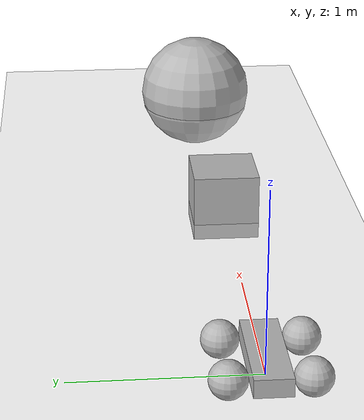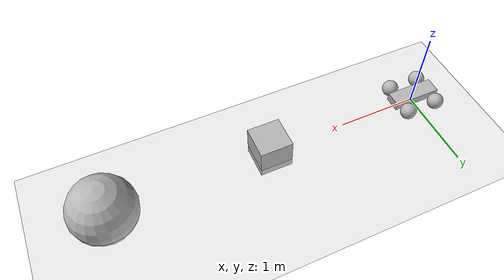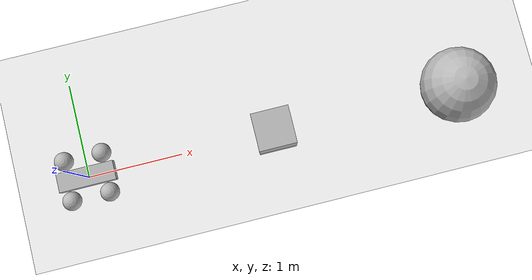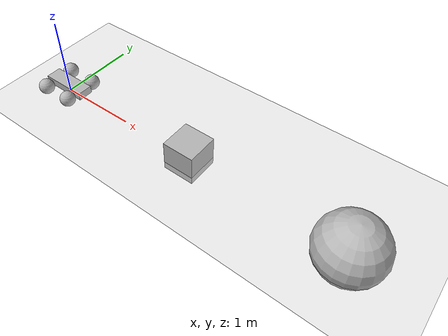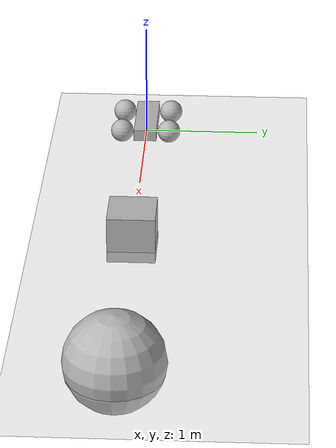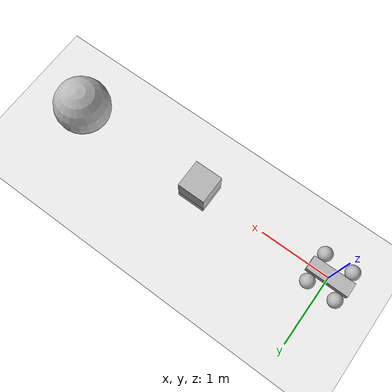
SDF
<?xml version="1.0"?>
<sdf version="1.6">
<world name="vehicle_world">

<!-- Sun -->
<include>
  <uri>model://sun</uri>
</include>

<!-- Ground Plane -->
<include>
  <uri>model://ground_plane</uri>
</include>

<!-- Vehicle -->
<include>
  <uri>model://vehicle</uri>
</include>

</world>
</sdf>

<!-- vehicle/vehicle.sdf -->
<sdf version="1.6">

<!-- Vehicle -->
<model name="vehicle">

  <pose>0 0 0.1 0 0 0</pose>
  <static>false</static>

  <link name="chassis">
    <pose>0 0 0 0 0 0</pose>

    <inertial>
      <inertia>
        <!-- (mass / 12) * (y*y + z*z) -->
        <ixx>0.0041666666666666675</ixx>
        <ixy>0</ixy>
        <ixz>0</ixz>
        <!-- (mass / 12) * (x*x + z*z) -->
        <iyy>0.03083333333333333</iyy>
        <iyz>0</iyz>
        <!-- (mass / 12) * (y*y + x*x) -->
        <izz>0.03333333333333333</izz>
      </inertia>
    </inertial>

    <collision name="collision">
      <geometry>
        <box>
          <size>.6 .2 .1</size>
        </box>
      </geometry>
    </collision>

    <visual name="visual">
      <geometry>
        <box>
          <size>.6 .2 .1</size>
        </box>
      </geometry>
    </visual>

    <!-- Stereocamera -->
    <sensor type="multicamera" name="stereo_camera">
      <pose>.3 0 .15 0 0 0</pose>
      <visualize>true</visualize>
      <always_on>1</always_on>
      <update_rate>30</update_rate>

      <camera name="left">
        <pose>0 .1 0 0 0 0</pose>
        <horizontal_fov>1.5708</horizontal_fov>
        <image>
          <width>320</width>
          <height>240</height>
        </image>
        <clip>
          <near>0.1</near>
          <far>100</far>
        </clip>
      </camera>

      <camera name="right">
        <pose>0 -.1 0 0 0 0</pose>
        <horizontal_fov>1.5708</horizontal_fov>
        <image>
          <width>320</width>
          <height>240</height>
        </image>
        <clip>
          <near>0.1</near>
          <far>100</far>
        </clip>
      </camera>
    </sensor>
  </link>

  <link name="l_front_wheel">
    <pose>.2 .21 0 0 0 0</pose>

    <inertial>
      <inertia>
        <!-- (2*mass / 5) * (r*r) -->
        <ixx>0.004000000000000001</ixx>
        <ixy>0</ixy>
        <ixz>0</ixz>
        <!-- (2*mass / 5) * (r*r) -->
        <iyy>0.004000000000000001</iyy>
        <iyz>0</iyz>
        <!-- (2*mass / 5) * (r*r) -->
        <izz>0.004000000000000001</izz>
      </inertia>
    </inertial>

    <collision name="collision">
      <geometry>
        <sphere>
          <radius>.1</radius>
        </sphere>
      </geometry>
    </collision>

    <visual name="visual">
       <geometry>
        <sphere>
          <radius>.1</radius>
        </sphere>
      </geometry>
    </visual>
  </link>

  <link name="r_front_wheel">
    <pose>.2 -.21 0 0 0 0</pose>

    <inertial>
      <inertia>
        <!-- (2*mass / 5) * (r*r) -->
        <ixx>0.004000000000000001</ixx>
        <ixy>0</ixy>
        <ixz>0</ixz>
        <!-- (2*mass / 5) * (r*r) -->
        <iyy>0.004000000000000001</iyy>
        <iyz>0</iyz>
        <!-- (2*mass / 5) * (r*r) -->
        <izz>0.004000000000000001</izz>
      </inertia>
    </inertial>

    <collision name="collision">
      <geometry>
        <sphere>
          <radius>.1</radius>
        </sphere>
      </geometry>
    </collision>

    <visual name="visual">
       <geometry>
        <sphere>
          <radius>.1</radius>
        </sphere>
      </geometry>
    </visual>
  </link>

  <link name="l_back_wheel">
    <pose>-.2 .21 0 0 0 0</pose>

    <inertial>
      <inertia>
        <!-- (2*mass / 5) * (r*r) -->
        <ixx>0.004000000000000001</ixx>
        <ixy>0</ixy>
        <ixz>0</ixz>
        <!-- (2*mass / 5) * (r*r) -->
        <iyy>0.004000000000000001</iyy>
        <iyz>0</iyz>
        <!-- (2*mass / 5) * (r*r) -->
        <izz>0.004000000000000001</izz>
      </inertia>
    </inertial>

    <collision name="collision">
      <geometry>
        <sphere>
          <radius>.1</radius>
        </sphere>
      </geometry>
    </collision>

    <visual name="visual">
       <geometry>
        <sphere>
          <radius>.1</radius>
        </sphere>
      </geometry>
    </visual>
  </link>

  <link name="r_back_wheel">
    <pose>-.2 -.21 0 0 0 0</pose>

    <inertial>
      <inertia>
        <!-- (2*mass / 5) * (r*r) -->
        <ixx>0.004000000000000001</ixx>
        <ixy>0</ixy>
        <ixz>0</ixz>
        <!-- (2*mass / 5) * (r*r) -->
        <iyy>0.004000000000000001</iyy>
        <iyz>0</iyz>
        <!-- (2*mass / 5) * (r*r) -->
        <izz>0.004000000000000001</izz>
      </inertia>
    </inertial>

    <collision name="collision">
      <geometry>
        <sphere>
          <radius>.1</radius>
        </sphere>
      </geometry>
    </collision>

    <visual name="visual">
       <geometry>
        <sphere>
          <radius>.1</radius>
        </sphere>
      </geometry>
    </visual>
  </link>

  <link name="l_front_wheel_virtual">
    <pose>.2 .21 0 0 0 0</pose>
  </link>

  <link name="r_front_wheel_virtual">
    <pose>.2 -.21 0 0 0 0</pose>
  </link>

  <link name="l_back_wheel_virtual">
    <pose>-.2 .21 0 0 0 0</pose>
  </link>

  <link name="r_back_wheel_virtual">
    <pose>-.2 -.21 0 0 0 0</pose>
  </link>

  <!-- Obstacle -->
  <link name="obstacle">
    <pose>2 0 0 0 0 0</pose>

    <collision name="collision">
      <geometry>
        <box>
          <size>0.4 0.4 0.4</size>
        </box>
      </geometry>
    </collision>

    <visual name="visual">
      <geometry>
        <box>
          <size>0.4 0.4 0.4</size>
        </box>
      </geometry>
      <material>
        <script>
          <uri>model://vehicle/materials/scripts</uri>
          <uri>model://vehicle/materials/textures</uri>
          <name>vehicle/obstacle</name>
        </script>
      </material>
    </visual>
  </link>

  <!-- Goal -->
  <link name="goal">
    <pose>4 0 0 0 0 0</pose>

    <collision name="collision">
      <geometry>
        <sphere>
          <radius>0.4</radius>
        </sphere>
      </geometry>
    </collision>

    <visual name="visual">
      <geometry>
        <sphere>
          <radius>0.4</radius>
        </sphere>
      </geometry>
      <material>
        <script>
          <uri>model://vehicle/materials/scripts</uri>
          <uri>model://vehicle/materials/textures</uri>
          <name>vehicle/goal</name>
        </script>
      </material>
    </visual>
  </link>

  <joint type="revolute" name="l_front_wheel_pitch">
    <pose>0 0 0 0 0 0</pose>

    <parent>chassis</parent>
    <child>l_front_wheel_virtual</child>
    <axis>
      <xyz>0 1 0</xyz>
    </axis>
  </joint>

  <joint type="revolute" name="l_front_wheel_roll">
    <pose>0 0 0 0 0 0</pose>

    <parent>l_front_wheel_virtual</parent>
    <child>l_front_wheel</child>
    <axis>
      <use_parent_model_frame>1</use_parent_model_frame>
      <xyz>1 0 0</xyz>
    </axis>
  </joint>

  <joint type="revolute" name="r_front_wheel_pitch">
    <pose>0 0 0 0 0 0</pose>

    <parent>chassis</parent>
    <child>r_front_wheel_virtual</child>
    <axis>
      <xyz>0 1 0</xyz>
    </axis>
  </joint>

  <joint type="revolute" name="r_front_wheel_roll">
    <pose>0 0 0 0 0 0</pose>

    <parent>r_front_wheel_virtual</parent>
    <child>r_front_wheel</child>
    <axis>
      <use_parent_model_frame>1</use_parent_model_frame>
      <xyz>1 0 0</xyz>
    </axis>
  </joint>

  <joint type="revolute" name="l_back_wheel_pitch">
    <pose>0 0 0 0 0 0</pose>

    <parent>chassis</parent>
    <child>l_back_wheel_virtual</child>
    <axis>
      <xyz>0 1 0</xyz>
    </axis>
  </joint>

  <joint type="revolute" name="l_back_wheel_roll">
    <pose>0 0 0 0 0 0</pose>

    <parent>l_back_wheel_virtual</parent>
    <child>l_back_wheel</child>
    <axis>
      <use_parent_model_frame>1</use_parent_model_frame>
      <xyz>1 0 0</xyz>
    </axis>
  </joint>

  <joint type="revolute" name="r_back_wheel_pitch">
    <pose>0 0 0 0 0 0</pose>

    <parent>chassis</parent>
    <child>r_back_wheel_virtual</child>
    <axis>
      <xyz>0 1 0</xyz>
    </axis>
  </joint>

  <joint type="revolute" name="r_back_wheel_roll">
    <pose>0 0 0 0 0 0</pose>

    <parent>r_back_wheel_virtual</parent>
    <child>r_back_wheel</child>
    <axis>
      <use_parent_model_frame>1</use_parent_model_frame>
      <xyz>1 0 0</xyz>
    </axis>
  </joint>

  <plugin name="VehiclePlugin" filename="libgazeboVehiclePlugin.so"/>

</model>
</sdf>
